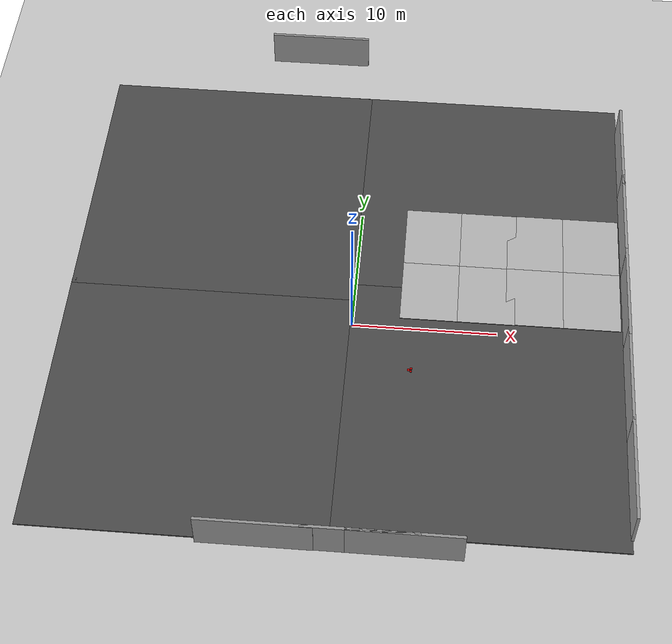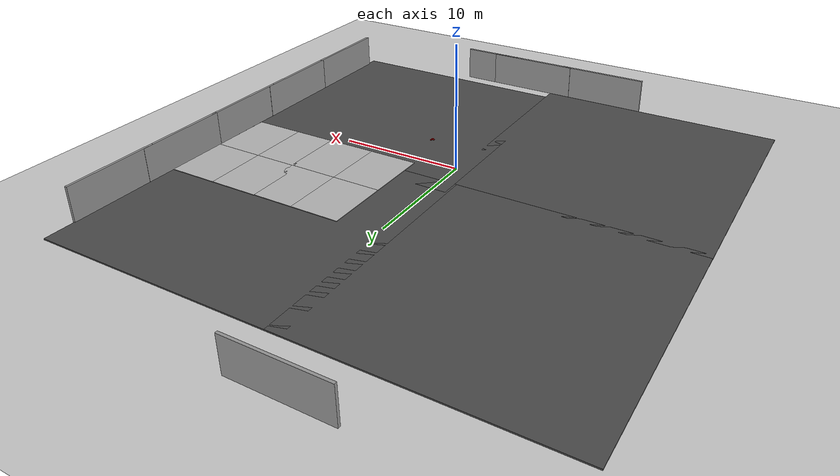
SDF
<sdf version="1.7">
 <world name="default">
  <model name="ground_plane">
   <static>1</static>
   <link name="link">
    <collision name="collision">
     <geometry><plane><normal>0 0 1</normal><size>100 100</size></plane></geometry>
     <surface><friction><ode><mu>100</mu><mu2>50</mu2></ode></friction></surface>
    </collision>
    <visual name="visual">
     <cast_shadows>0</cast_shadows>
     <geometry><plane><normal>0 0 1</normal><size>100 100</size></plane></geometry>
     <material>
      <script><uri>file://media/materials/scripts/gazebo.material</uri><name>Gazebo/Grey</name></script>
     </material>
    </visual>
   </link>
  </model>
  <model name="asphalt_plane">
   <static>1</static>
   <link name="link">
    <collision name="collision">
     <geometry><box><size>20 20 0.1</size></box></geometry>
     <surface><friction><ode><mu>100</mu><mu2>50</mu2></ode></friction></surface>
    </collision>
    <visual name="visual">
     <cast_shadows>0</cast_shadows>
     <geometry><box><size>20 20 0.1</size></box></geometry>
     <material>
      <script>
       <uri>model://asphalt_plane/materials/scripts</uri>
       <uri>model://asphalt_plane/materials/textures</uri>
       <name>vrc/asphalt</name>
      </script>
     </material>
    </visual>
   </link>
   <pose>-10.1692 -7.43707 0 0 -0 0</pose>
  </model>
  <model name="asphalt_plane_clone">
   <static>1</static>
   <link name="link">
    <collision name="collision">
     <geometry><box><size>20 20 0.1</size></box></geometry>
     <surface><friction><ode><mu>100</mu><mu2>50</mu2></ode></friction></surface>
    </collision>
    <visual name="visual">
     <cast_shadows>0</cast_shadows>
     <geometry><box><size>20 20 0.1</size></box></geometry>
     <material>
      <script>
       <uri>model://asphalt_plane/materials/scripts</uri>
       <uri>model://asphalt_plane/materials/textures</uri>
       <name>vrc/asphalt</name>
      </script>
     </material>
    </visual>
   </link>
   <pose>-10.1603 12.171 0 0 -0 0</pose>
  </model>
  <model name="asphalt_plane_clone_clone">
   <static>1</static>
   <link name="link">
    <collision name="collision">
     <geometry><box><size>20 20 0.1</size></box></geometry>
     <surface><friction><ode><mu>100</mu><mu2>50</mu2></ode></friction></surface>
    </collision>
    <visual name="visual">
     <cast_shadows>0</cast_shadows>
     <geometry><box><size>20 20 0.1</size></box></geometry>
     <material>
      <script>
       <uri>model://asphalt_plane/materials/scripts</uri>
       <uri>model://asphalt_plane/materials/textures</uri>
       <name>vrc/asphalt</name>
      </script>
     </material>
    </visual>
   </link>
   <pose>8.71597 12.1785 0 0 -0 0</pose>
  </model>
  <model name="asphalt_plane_clone_clone_0">
   <static>1</static>
   <link name="link">
    <collision name="collision">
     <geometry><box><size>20 20 0.1</size></box></geometry>
     <surface><friction><ode><mu>100</mu><mu2>50</mu2></ode></friction></surface>
    </collision>
    <visual name="visual">
     <cast_shadows>0</cast_shadows>
     <geometry><box><size>20 20 0.1</size></box></geometry>
     <material>
      <script>
       <uri>model://asphalt_plane/materials/scripts</uri>
       <uri>model://asphalt_plane/materials/textures</uri>
       <name>vrc/asphalt</name>
      </script>
     </material>
    </visual>
   </link>
   <pose>8.88113 -6.41043 0 0 -0 0</pose>
  </model>
  <model name="grey_wall">
   <static>1</static>
   <link name="link">
    <pose>0 0 1.4 0 -0 0</pose>
    <collision name="collision"><geometry><box><size>7.5 0.2 2.8</size></box></geometry></collision>
    <visual name="visual">
     <cast_shadows>0</cast_shadows>
     <geometry><box><size>7.5 0.2 2.8</size></box></geometry>
     <material>
      <script>
       <uri>model://grey_wall/materials/scripts</uri>
       <uri>model://grey_wall/materials/textures</uri>
       <name>vrc/grey_wall</name>
      </script>
     </material>
    </visual>
   </link>
   <pose>-4.8114 -17.6626 0 0 -0 0</pose>
  </model>
  <model name="grey_wall_clone">
   <static>1</static>
   <link name="link">
    <pose>0 0 1.4 0 -0 0</pose>
    <collision name="collision"><geometry><box><size>7.5 0.2 2.8</size></box></geometry></collision>
    <visual name="visual">
     <cast_shadows>0</cast_shadows>
     <geometry><box><size>7.5 0.2 2.8</size></box></geometry>
     <material>
      <script>
       <uri>model://grey_wall/materials/scripts</uri>
       <uri>model://grey_wall/materials/textures</uri>
       <name>vrc/grey_wall</name>
      </script>
     </material>
    </visual>
   </link>
   <pose>1.84642 -17.6367 0 0 -0 0</pose>
  </model>
  <model name="grey_wall_clone_0">
   <static>1</static>
   <link name="link">
    <pose>0 0 1.4 0 -0 0</pose>
    <collision name="collision"><geometry><box><size>7.5 0.2 2.8</size></box></geometry></collision>
    <visual name="visual">
     <cast_shadows>0</cast_shadows>
     <geometry><box><size>7.5 0.2 2.8</size></box></geometry>
     <material>
      <script>
       <uri>model://grey_wall/materials/scripts</uri>
       <uri>model://grey_wall/materials/textures</uri>
       <name>vrc/grey_wall</name>
      </script>
     </material>
    </visual>
   </link>
   <pose>4.62088 -17.6372 0 0 -0 0</pose>
  </model>
  <model name="grey_wall_clone_clone">
   <static>1</static>
   <link name="link">
    <pose>0 0 1.4 0 -0 0</pose>
    <collision name="collision"><geometry><box><size>7.5 0.2 2.8</size></box></geometry></collision>
    <visual name="visual">
     <cast_shadows>0</cast_shadows>
     <geometry><box><size>7.5 0.2 2.8</size></box></geometry>
     <material>
      <script>
       <uri>model://grey_wall/materials/scripts</uri>
       <uri>model://grey_wall/materials/textures</uri>
       <name>vrc/grey_wall</name>
      </script>
     </material>
    </visual>
   </link>
   <pose>-4.48764 26.0166 0 0 -0 0</pose>
  </model>
  <model name="grey_wall_clone_clone_clone">
   <static>1</static>
   <link name="link">
    <pose>0 0 1.4 0 -0 0</pose>
    <collision name="collision"><geometry><box><size>7.5 0.2 2.8</size></box></geometry></collision>
    <visual name="visual">
     <cast_shadows>0</cast_shadows>
     <geometry><box><size>7.5 0.2 2.8</size></box></geometry>
     <material>
      <script>
       <uri>model://grey_wall/materials/scripts</uri>
       <uri>model://grey_wall/materials/textures</uri>
       <name>vrc/grey_wall</name>
      </script>
     </material>
    </visual>
   </link>
   <pose>18.7544 16.0387 0 0 0 -1.56734</pose>
  </model>
  <model name="grey_wall_clone_clone_clone_clone">
   <static>1</static>
   <link name="link">
    <pose>0 0 1.4 0 -0 0</pose>
    <collision name="collision"><geometry><box><size>7.5 0.2 2.8</size></box></geometry></collision>
    <visual name="visual">
     <cast_shadows>0</cast_shadows>
     <geometry><box><size>7.5 0.2 2.8</size></box></geometry>
     <material>
      <script>
       <uri>model://grey_wall/materials/scripts</uri>
       <uri>model://grey_wall/materials/textures</uri>
       <name>vrc/grey_wall</name>
      </script>
     </material>
    </visual>
   </link>
   <pose>18.767 9.41754 0 0 0 -1.56734</pose>
  </model>
  <model name="grey_wall_clone_clone_clone_clone_0">
   <static>1</static>
   <link name="link">
    <pose>0 0 1.4 0 -0 0</pose>
    <collision name="collision"><geometry><box><size>7.5 0.2 2.8</size></box></geometry></collision>
    <visual name="visual">
     <cast_shadows>0</cast_shadows>
     <geometry><box><size>7.5 0.2 2.8</size></box></geometry>
     <material>
      <script>
       <uri>model://grey_wall/materials/scripts</uri>
       <uri>model://grey_wall/materials/textures</uri>
       <name>vrc/grey_wall</name>
      </script>
     </material>
    </visual>
   </link>
   <pose>18.7963 2.45369 0 0 0 -1.56734</pose>
  </model>
  <model name="grey_wall_clone_clone_clone_clone_1">
   <static>1</static>
   <link name="link">
    <pose>0 0 1.4 0 -0 0</pose>
    <collision name="collision"><geometry><box><size>7.5 0.2 2.8</size></box></geometry></collision>
    <visual name="visual">
     <cast_shadows>0</cast_shadows>
     <geometry><box><size>7.5 0.2 2.8</size></box></geometry>
     <material>
      <script>
       <uri>model://grey_wall/materials/scripts</uri>
       <uri>model://grey_wall/materials/textures</uri>
       <name>vrc/grey_wall</name>
      </script>
     </material>
    </visual>
   </link>
   <pose>18.8058 -4.41342 0 0 0 -1.56734</pose>
  </model>
  <model name="grey_wall_clone_clone_clone_clone_2">
   <static>1</static>
   <link name="link">
    <pose>0 0 1.4 0 -0 0</pose>
    <collision name="collision"><geometry><box><size>7.5 0.2 2.8</size></box></geometry></collision>
    <visual name="visual">
     <cast_shadows>0</cast_shadows>
     <geometry><box><size>7.5 0.2 2.8</size></box></geometry>
     <material>
      <script>
       <uri>model://grey_wall/materials/scripts</uri>
       <uri>model://grey_wall/materials/textures</uri>
       <name>vrc/grey_wall</name>
      </script>
     </material>
    </visual>
   </link>
   <pose>18.8343 -11.7301 0 0 0 -1.56734</pose>
  </model>
  <model name="mud_box">
   <static>1</static>
   <link name="link">
    <collision name="collision"><geometry><box><size>8 10 0.2</size></box></geometry></collision>
    <visual name="visual_1">
     <pose>-2 2.5 0 0 -0 0</pose>
     <cast_shadows>0</cast_shadows>
     <geometry><box><size>4 5 0.2</size></box></geometry>
     <material>
      <script>
       <uri>model://mud_box/materials/scripts</uri>
       <uri>model://mud_box/materials/textures</uri>
       <name>vrc/mud</name>
      </script>
     </material>
    </visual>
    <visual name="visual_2">
     <pose>2 2.5 0 0 -0 0</pose>
     <cast_shadows>0</cast_shadows>
     <geometry><box><size>4 5 0.2</size></box></geometry>
     <material>
      <script>
       <uri>model://mud_box/materials/scripts</uri>
       <uri>model://mud_box/materials/textures</uri>
       <name>vrc/mud</name>
      </script>
     </material>
    </visual>
    <visual name="visual_3">
     <pose>2 -2.5 0 0 -0 0</pose>
     <cast_shadows>0</cast_shadows>
     <geometry><box><size>4 5 0.2</size></box></geometry>
     <material>
      <script>
       <uri>model://mud_box/materials/scripts</uri>
       <uri>model://mud_box/materials/textures</uri>
       <name>vrc/mud</name>
      </script>
     </material>
    </visual>
    <visual name="visual_4">
     <pose>-2 -2.5 0 0 -0 0</pose>
     <cast_shadows>0</cast_shadows>
     <geometry><box><size>4 5 0.2</size></box></geometry>
     <material>
      <script>
       <uri>model://mud_box/materials/scripts</uri>
       <uri>model://mud_box/materials/textures</uri>
       <name>vrc/mud</name>
      </script>
     </material>
    </visual>
   </link>
   <pose>14.6137 5.86275 0 0 -0 0</pose>
  </model>
  <model name="mud_box_clone">
   <static>1</static>
   <link name="link">
    <collision name="collision"><geometry><box><size>8 10 0.2</size></box></geometry></collision>
    <visual name="visual_1">
     <pose>-2 2.5 0 0 -0 0</pose>
     <cast_shadows>0</cast_shadows>
     <geometry><box><size>4 5 0.2</size></box></geometry>
     <material>
      <script>
       <uri>model://mud_box/materials/scripts</uri>
       <uri>model://mud_box/materials/textures</uri>
       <name>vrc/mud</name>
      </script>
     </material>
    </visual>
    <visual name="visual_2">
     <pose>2 2.5 0 0 -0 0</pose>
     <cast_shadows>0</cast_shadows>
     <geometry><box><size>4 5 0.2</size></box></geometry>
     <material>
      <script>
       <uri>model://mud_box/materials/scripts</uri>
       <uri>model://mud_box/materials/textures</uri>
       <name>vrc/mud</name>
      </script>
     </material>
    </visual>
    <visual name="visual_3">
     <pose>2 -2.5 0 0 -0 0</pose>
     <cast_shadows>0</cast_shadows>
     <geometry><box><size>4 5 0.2</size></box></geometry>
     <material>
      <script>
       <uri>model://mud_box/materials/scripts</uri>
       <uri>model://mud_box/materials/textures</uri>
       <name>vrc/mud</name>
      </script>
     </material>
    </visual>
    <visual name="visual_4">
     <pose>-2 -2.5 0 0 -0 0</pose>
     <cast_shadows>0</cast_shadows>
     <geometry><box><size>4 5 0.2</size></box></geometry>
     <material>
      <script>
       <uri>model://mud_box/materials/scripts</uri>
       <uri>model://mud_box/materials/textures</uri>
       <name>vrc/mud</name>
      </script>
     </material>
    </visual>
   </link>
   <pose>7.23773 5.83307 0 0 -0 0</pose>
  </model>
  <light name="sun" type="directional">
   <pose>0 0 10 0 -0 0</pose>
   <diffuse>0.8 0.8 0.8 1</diffuse>
   <specular>0.2 0.2 0.2 1</specular>
   <attenuation>
    <range>1000</range>
    <constant>0.9</constant>
    <linear>0.01</linear>
    <quadratic>0.001</quadratic>
   </attenuation>
   <direction>-0.5 0.1 -0.9</direction>
   <spot><inner_angle>0</inner_angle><outer_angle>0</outer_angle><falloff>0</falloff></spot>
  </light>
  <gravity>0 0 -9.8</gravity>
  <magnetic_field>6e-06 2.3e-05 -4.2e-05</magnetic_field>
  <atmosphere type="adiabatic"/>
  <physics name="default_physics" default="0" type="ode">
   <max_step_size>0.001</max_step_size>
   <real_time_factor>1</real_time_factor>
   <real_time_update_rate>1000</real_time_update_rate>
   <solver>
    <friction_model>cone_model</friction_model>
    <type>quick</type>
    <iters>50</iters>
    <sor>1.3</sor>
    <use_dynamic_moi_rescaling>0</use_dynamic_moi_rescaling>
   </solver>
  </physics>
  <scene><ambient>0.4 0.4 0.4 1</ambient><background>0.7 0.7 0.7 1</background><shadows>1</shadows></scene>
  <audio><device>default</device></audio>
  <spherical_coordinates>
   <surface_model>EARTH_WGS84</surface_model>
   <latitude_deg>33.83</latitude_deg>
   <longitude_deg>-84.42</longitude_deg>
   <elevation>254.996</elevation>
   <heading_deg>180</heading_deg>
  </spherical_coordinates>
  <model name="red_bean_bag">
   <link name="link_0">
    <inertial>
     <mass>0.425243</mass>
     <inertia>
      <ixx>0.0708738</ixx>
      <ixy>0</ixy>
      <ixz>0</ixz>
      <iyy>0.0708738</iyy>
      <iyz>0</iyz>
      <izz>0.0708738</izz>
     </inertia>
    </inertial>
    <visual name="visual">
     <geometry><box><size>0.1524 0.1524 0.0254</size></box></geometry>
     <material>
      <lighting>1</lighting>
      <script><uri>file://media/materials/scripts/gazebo.material</uri><name>Gazebo/Grey</name></script>
      <shader type="pixel"><normal_map>__default__</normal_map></shader>
      <ambient>0.75 0 0 1</ambient>
      <diffuse>0.7 0.7 0.7 1</diffuse>
      <specular>0.01 0.01 0.01 1</specular>
      <emissive>0 0 0 1</emissive>
     </material>
    </visual>
    <collision name="collision">
     <geometry><box><size>0.1524 0.1524 0.0254</size></box></geometry>
     <surface>
      <friction>
       <ode><mu>1</mu><mu2>1</mu2><fdir1>0 0 0</fdir1><slip1>0</slip1><slip2>0</slip2></ode>
       <torsional>
        <coefficient>1</coefficient>
        <patch_radius>0</patch_radius>
        <surface_radius>0</surface_radius>
        <use_patch_radius>1</use_patch_radius>
        <ode><slip>0</slip></ode>
       </torsional>
      </friction>
      <bounce><restitution_coefficient>0</restitution_coefficient><threshold>1e+06</threshold></bounce>
      <contact>
       <collide_without_contact>0</collide_without_contact>
       <collide_without_contact_bitmask>1</collide_without_contact_bitmask>
       <collide_bitmask>1</collide_bitmask>
       <ode>
        <soft_cfm>0</soft_cfm>
        <soft_erp>0.2</soft_erp>
        <kp>1e+13</kp>
        <kd>1</kd>
        <max_vel>0.01</max_vel>
        <min_depth>0</min_depth>
       </ode>
       <bullet>
        <split_impulse>1</split_impulse>
        <split_impulse_penetration_threshold>-0.01</split_impulse_penetration_threshold>
        <soft_cfm>0</soft_cfm>
        <soft_erp>0.2</soft_erp>
        <kp>1e+13</kp>
        <kd>1</kd>
       </bullet>
      </contact>
     </surface>
    </collision>
   </link>
   <static>0</static>
   <pose>4.10891 -3.53334 0.0627 -3e-06 2e-06 0.011622</pose>
  </model>
  <model name="red_bean_bag_0">
   <link name="link_0">
    <inertial>
     <mass>0.425243</mass>
     <inertia>
      <ixx>0.0708738</ixx>
      <ixy>0</ixy>
      <ixz>0</ixz>
      <iyy>0.0708738</iyy>
      <iyz>0</iyz>
      <izz>0.0708738</izz>
     </inertia>
    </inertial>
    <visual name="visual">
     <geometry><box><size>0.1524 0.1524 0.0254</size></box></geometry>
     <material>
      <lighting>1</lighting>
      <script><uri>file://media/materials/scripts/gazebo.material</uri><name>Gazebo/Grey</name></script>
      <shader type="pixel"><normal_map>__default__</normal_map></shader>
      <ambient>0.75 0 0 1</ambient>
      <diffuse>0.7 0.7 0.7 1</diffuse>
      <specular>0.01 0.01 0.01 1</specular>
      <emissive>0 0 0 1</emissive>
     </material>
    </visual>
    <collision name="collision">
     <geometry><box><size>0.1524 0.1524 0.0254</size></box></geometry>
     <surface>
      <friction>
       <ode><mu>1</mu><mu2>1</mu2><fdir1>0 0 0</fdir1><slip1>0</slip1><slip2>0</slip2></ode>
       <torsional>
        <coefficient>1</coefficient>
        <patch_radius>0</patch_radius>
        <surface_radius>0</surface_radius>
        <use_patch_radius>1</use_patch_radius>
        <ode><slip>0</slip></ode>
       </torsional>
      </friction>
      <bounce><restitution_coefficient>0</restitution_coefficient><threshold>1e+06</threshold></bounce>
      <contact>
       <collide_without_contact>0</collide_without_contact>
       <collide_without_contact_bitmask>1</collide_without_contact_bitmask>
       <collide_bitmask>1</collide_bitmask>
       <ode>
        <soft_cfm>0</soft_cfm>
        <soft_erp>0.2</soft_erp>
        <kp>1e+13</kp>
        <kd>1</kd>
        <max_vel>0.01</max_vel>
        <min_depth>0</min_depth>
       </ode>
       <bullet>
        <split_impulse>1</split_impulse>
        <split_impulse_penetration_threshold>-0.01</split_impulse_penetration_threshold>
        <soft_cfm>0</soft_cfm>
        <soft_erp>0.2</soft_erp>
        <kp>1e+13</kp>
        <kd>1</kd>
       </bullet>
      </contact>
     </surface>
    </collision>
   </link>
   <static>0</static>
   <pose>4.26572 -3.62927 0.062602 -1.8e-05 -1.2e-05 -0.000271</pose>
  </model>
  <model name="red_bean_bag_1">
   <link name="link_0">
    <inertial>
     <mass>0.425243</mass>
     <inertia>
      <ixx>0.0708738</ixx>
      <ixy>0</ixy>
      <ixz>0</ixz>
      <iyy>0.0708738</iyy>
      <iyz>0</iyz>
      <izz>0.0708738</izz>
     </inertia>
    </inertial>
    <visual name="visual">
     <geometry><box><size>0.1524 0.1524 0.0254</size></box></geometry>
     <material>
      <lighting>1</lighting>
      <script><uri>file://media/materials/scripts/gazebo.material</uri><name>Gazebo/Grey</name></script>
      <shader type="pixel"><normal_map>__default__</normal_map></shader>
      <ambient>0.75 0 0 1</ambient>
      <diffuse>0.7 0.7 0.7 1</diffuse>
      <specular>0.01 0.01 0.01 1</specular>
      <emissive>0 0 0 1</emissive>
     </material>
    </visual>
    <collision name="collision">
     <geometry><box><size>0.1524 0.1524 0.0254</size></box></geometry>
     <surface>
      <friction>
       <ode><mu>1</mu><mu2>1</mu2><fdir1>0 0 0</fdir1><slip1>0</slip1><slip2>0</slip2></ode>
       <torsional>
        <coefficient>1</coefficient>
        <patch_radius>0</patch_radius>
        <surface_radius>0</surface_radius>
        <use_patch_radius>1</use_patch_radius>
        <ode><slip>0</slip></ode>
       </torsional>
      </friction>
      <bounce><restitution_coefficient>0</restitution_coefficient><threshold>1e+06</threshold></bounce>
      <contact>
       <collide_without_contact>0</collide_without_contact>
       <collide_without_contact_bitmask>1</collide_without_contact_bitmask>
       <collide_bitmask>1</collide_bitmask>
       <ode>
        <soft_cfm>0</soft_cfm>
        <soft_erp>0.2</soft_erp>
        <kp>1e+13</kp>
        <kd>1</kd>
        <max_vel>0.01</max_vel>
        <min_depth>0</min_depth>
       </ode>
       <bullet>
        <split_impulse>1</split_impulse>
        <split_impulse_penetration_threshold>-0.01</split_impulse_penetration_threshold>
        <soft_cfm>0</soft_cfm>
        <soft_erp>0.2</soft_erp>
        <kp>1e+13</kp>
        <kd>1</kd>
       </bullet>
      </contact>
     </surface>
    </collision>
   </link>
   <static>0</static>
   <pose>4.26215 -3.41403 0.062176 -9.4e-05 0.00014 0.001078</pose>
  </model>
 </world>
</sdf>
